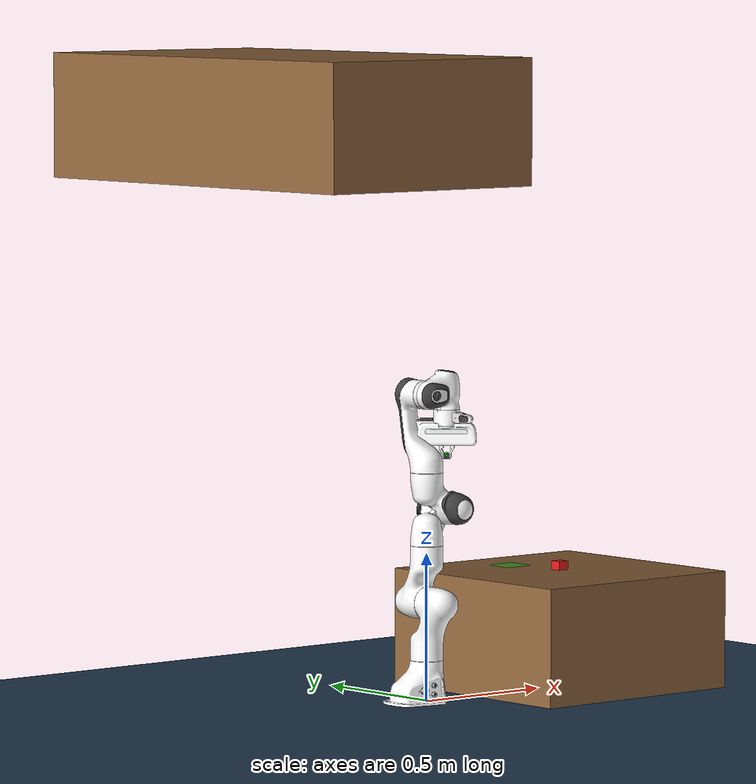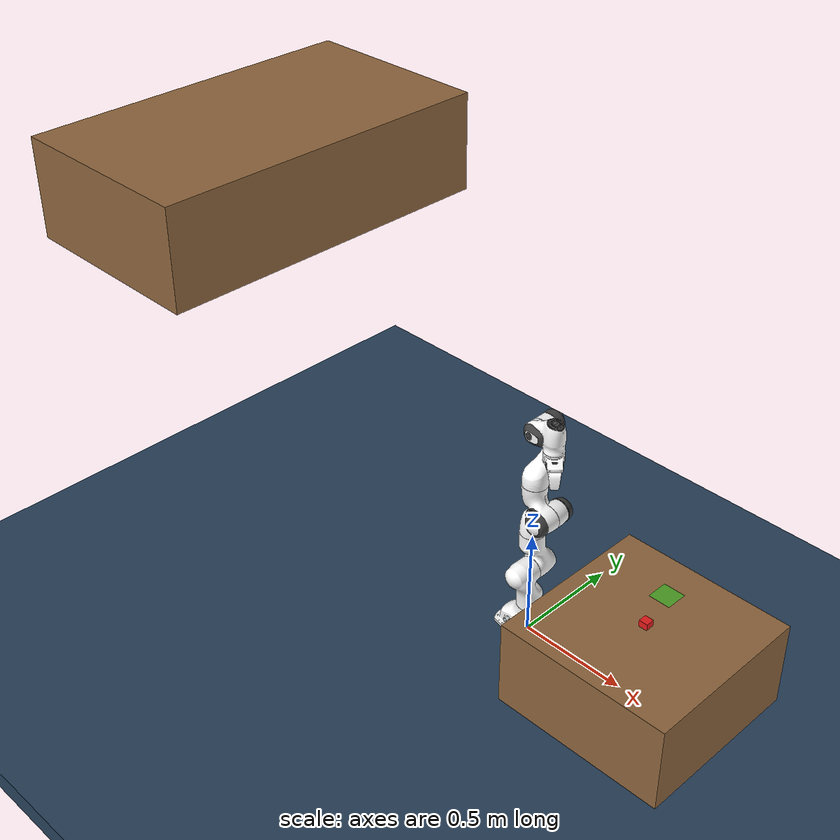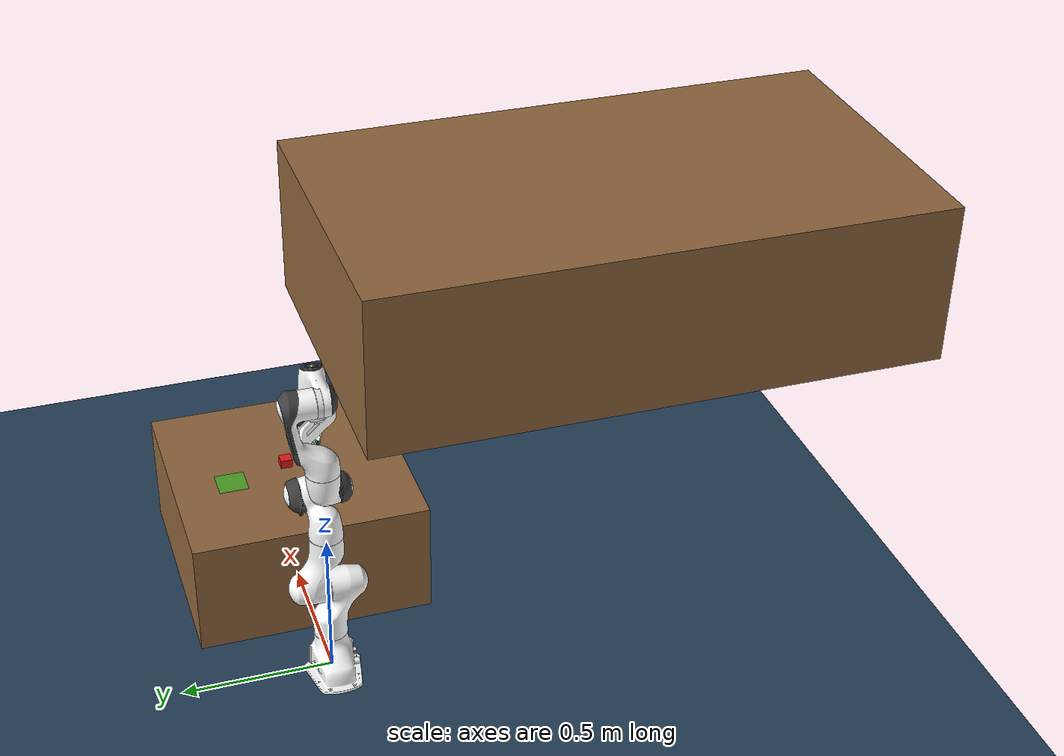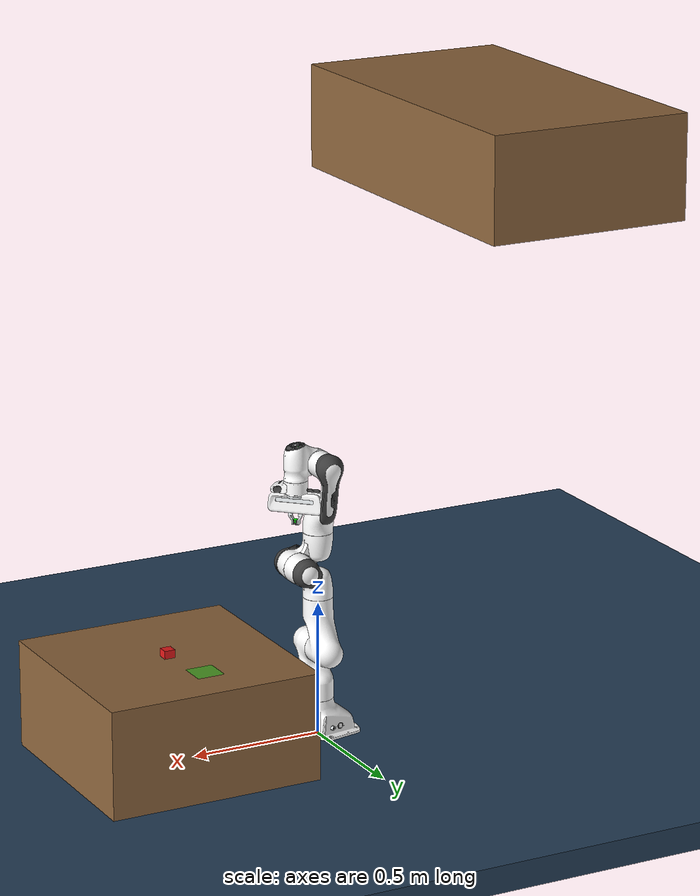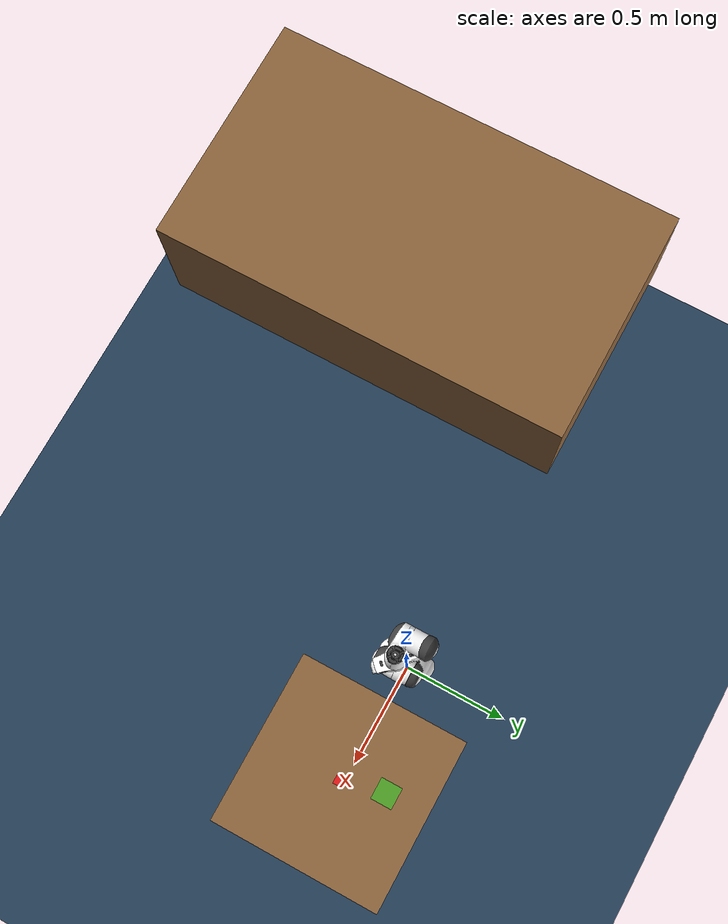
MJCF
<mujoco model="dgpo_final_scene">
  <!-- Include Panda robot -->
  <include file="../mujoco_menagerie/franka_emika_panda/panda.xml"/>

  <compiler meshdir="../mujoco_menagerie/franka_emika_panda/assets" angle="radian" autolimits="true"/>
<option timestep="0.0005" solver="Newton" iterations="30" tolerance="1e-9" jacobian="dense" cone="elliptic"/>

  <visual>
    <quality shadowsize="8192" />
    <headlight diffuse="0 0 0" ambient="0.5 0.5 0.5" specular="0 0 0" active="1" />
    <global azimuth="120" elevation="-20" />
  </visual>

<asset>

    <texture name="tex_checker_blue" type="2d" builtin="checker" rgb1="0.1 0.2 0.3" rgb2="0.2 0.3 0.4" width="300" height="300"/>

    <texture name="tex_checker_green" type="2d" builtin="checker" rgb1="0.1 0.3 0.2" rgb2="0.2 0.4 0.3" width="300" height="300"/>

    <texture name="tex_noise_low_contrast" type="2d" builtin="checker" rgb1="0.4 0.4 0.4" rgb2="0.6 0.6 0.6" width="300" height="300"/>

    <texture name="tex_noise_high_contrast" type="2d" builtin="checker" rgb1="0.1 0.1 0.1" rgb2="0.7 0.7 0.7" width="300" height="300"/>

    <!-- 2. Realistic Textures (from image files) -->
    <!-- IMPORTANT: Update the file paths to match your project structure -->
    <texture name="tex_wood_light" type="2d" file="assets/textures/wood_light.png"/>
    <texture name="tex_wood_dark" type="2d" file="assets/textures/wood_dark.png"/>
    <texture name="tex_metal_brushed" type="2d" file="assets/textures/metal_brushed.png"/>
    <texture name="tex_marble_white" type="2d" file="assets/textures/marble_white.png"/>

    <texture name="tex_wood_stripe" type="2d" file="assets/textures/wood_stripe.png"/> <!-- NEW -->
    <texture name="tex_wood_paquet" type="2d" file="assets/textures/wood_paquet.png"/> <!-- NEW -->

    <!-- Materials for the Floor -->
    <material name="mat_floor_checker_blue" texture="tex_checker_blue" texrepeat="5 5" texuniform="true" reflectance="0.2"/>
    <material name="mat_floor_checker_green" texture="tex_checker_green" texrepeat="5 5" texuniform="true" reflectance="0.2"/>
    <material name="mat_floor_wood_dark" texture="tex_wood_dark" texrepeat="2 2" texuniform="true" reflectance="0.1"/>
    <material name="mat_floor_wood_paquet" texture="tex_wood_paquet" texrepeat="3 3" texuniform="true" reflectance="0.05"/>

    <!-- Materials for the Table -->
    <material name="mat_table_wood_light"
              texture="tex_wood_light"
              texrepeat="1 1"
              texuniform="true"
              rgba="0.8 0.8 0.8 1"
              specular="0.02"
              shininess="0.1"
              reflectance="0.0"/>

    <material name="mat_table_metal_brushed"
              texture="tex_metal_brushed"
              texrepeat="1 1"
              texuniform="true"
              specular="0.8"      shininess="0.6"     reflectance="0.05"/>

    <material name="mat_table_marble_white"
              texture="tex_marble_white"
              texrepeat="1 1"
              texuniform="true"
              rgba="0.9 0.9 0.9 1"
              specular="0.01"
              shininess="0.05"
              reflectance="0.0"/>

    <material name="mat_table_noise_low"
              texture="tex_noise_low_contrast"
              texrepeat="1 1"
              texuniform="true"
              specular="0.0"
              reflectance="0.0"/>

    <material name="mat_table_noise_high"
              texture="tex_noise_high_contrast"
              texrepeat="1 1"
              texuniform="true"
              specular="0.0"
              reflectance="0.0"/>
    <material name="mat_table_wood_stripe"
              texture="tex_wood_stripe"
              texrepeat="2 2"
              texuniform="true"
              specular="0.02"
              shininess="0.1"
              reflectance="0.0"/>
    <!-- Original materials for the object and goal (we don't randomize these) -->
    <material name="cube_mat" rgba="0.9 0.1 0.1 1.0"/>
    <material name="goal_mat" rgba="0.1 0.9 0.1 0.5"/>
  </asset>
  <default>
     <geom solref="0.02 1" solimp="0.95 0.98 0.001" friction="1.5 0.005 0.0001"/>
  </default>
  <worldbody>

  <light name="main_light"
           pos="1.5 0.5 2.5"
           dir="0 0 -1"
           directional="false"
           castshadow="true"
           cutoff="60"
           exponent="30"
           diffuse="0.8 0.8 0.8"
           specular="0.2 0.2 0.2"/>

    <light name="fill_light"
           pos="-0.5 -0.5 2.0"
           dir="0 0 -1"
           directional="false"
           castshadow="true"
           cutoff="80"
           exponent="20"
           diffuse="0.4 0.4 0.4"
           specular="0.05 0.05 0.05"/>

    <light name="back_light"
           pos="0.6 -1.0 1.5"
           dir="0 0 -1"
           directional="false"
           castshadow="true"
           cutoff="70"
           exponent="25"
           diffuse="0.25 0.25 0.25"
           specular="0.1 0.1 0.1"/>

    <geom name="floor" type="box" pos="0.5 0 -0.05" size="5 5 0.05" material="mat_floor_checker_blue" contype="0" conaffinity="0"/>

    <!-- Table -->

    <body name="table" pos="0.6 0 0.2">
      <geom name="table_geom" type="box" size="0.4 0.4 0.2" material="mat_table_wood_light"/>
    </body>
    <body name="tablse" pos="-1 -0.5 2.0">
      <geom name="tabsle_geom" type="box" size="0.4 0.7 0.2" material="mat_table_wood_light"/>
    </body>
    <!-- Robot base anchor -->
    <body name="robot_base" pos="0 0 0"/>

    <!-- Cube (resting on table) -->
    <body name="object" pos="0.6 0 0.41">
      <joint type="free" name="object_joint" damping="0.05"/>
      <geom name="object_geom" type="box" size="0.02 0.02 0.02" material="cube_mat" mass="0.25"/>
       <site name="object_site" pos="0 0 0" size="0.005" rgba="1 0 0 0.5"/>
    </body>

    <!-- Goal marker (on table surface) -->
    <body name="goal" pos="0.55 0.2 0.401">
      <geom name="goal_geom" type="box" size="0.05 0.05 0.001" material="goal_mat" contype="0" conaffinity="0"/>
    </body>
    <!-- Camera -->
    <camera name="fixed_camera" pos="1.2 -0.5 1.0" xyaxes="0 -1 0 0.707 0 -0.707"/>

  </worldbody>

<equality>

    <weld body1="robot_base" body2="link0"/>

</equality>

<!-- In envs/panda_pick_place.xml -->

  <!-- Extra contact exclusions quat="0.707 0.707 0 0" -->
<contact>
    <!-- Exclude contacts between the fingers and the table to prevent sticking -->
    <exclude body1="left_finger" body2="table"/>
    <exclude body1="right_finger" body2="table"/>

    <!-- THIS IS THE FIX: Prevent the main hand from sticking to the table -->
    <exclude body1="hand" body2="table"/>

</contact>

</mujoco>

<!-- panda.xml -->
<mujoco model="panda">
  <compiler angle="radian" meshdir="assets" autolimits="true"/>

  <default>
    <default class="panda">
      <material specular="0.5" shininess="0.25"/>
      <joint armature="0.1" damping="1" axis="0 0 1" range="-2.8973 2.8973"/>
      <general dyntype="none" biastype="affine" ctrlrange="-2.8973 2.8973" forcerange="-87 87"/>
      <default class="finger">
        <joint axis="0 1 0" type="slide" range="0 0.04"/>
      </default>

      <default class="visual">
        <geom type="mesh" contype="0" conaffinity="0" group="2"/>
      </default>
      <default class="collision">
        <geom type="mesh" group="3"/>
        <default class="fingertip_pad_collision_1">
          <geom type="box" size="0.0085 0.004 0.012" pos="0 0.0055 0.0445"/>
        </default>
        <default class="fingertip_pad_collision_2">
          <geom type="box" size="0.003 0.002 0.003" pos="0.0055 0.002 0.05"/>
        </default>
        <default class="fingertip_pad_collision_3">
          <geom type="box" size="0.003 0.002 0.003" pos="-0.0055 0.002 0.05"/>
        </default>
        <default class="fingertip_pad_collision_4">
          <geom type="box" size="0.003 0.002 0.0035" pos="0.0055 0.002 0.0395"/>
        </default>
        <default class="fingertip_pad_collision_5">
          <geom type="box" size="0.003 0.002 0.0035" pos="-0.0055 0.002 0.0395"/>
        </default>
      </default>
    </default>
  </default>

  <asset>
    <material class="panda" name="white" rgba="1 1 1 1" specular="0.2" shininess="30"/>
    <material class="panda" name="off_white" rgba="0.901961 0.921569 0.929412 1" specular="0.15" shininess="30"/>
    <material class="panda" name="black" rgba="0.25 0.25 0.25 1"/>
    <material class="panda" name="green" rgba="0 1 0 1"/>
    <material class="panda" name="light_blue" rgba="0.039216 0.541176 0.780392 1"/>

    <!-- Collision meshes -->
    <mesh name="link0_c" file="link0.stl"/>
    <mesh name="link1_c" file="link1.stl"/>
    <mesh name="link2_c" file="link2.stl"/>
    <mesh name="link3_c" file="link3.stl"/>
    <mesh name="link4_c" file="link4.stl"/>
    <mesh name="link5_c0" file="link5_collision_0.obj"/>
    <mesh name="link5_c1" file="link5_collision_1.obj"/>
    <mesh name="link5_c2" file="link5_collision_2.obj"/>
    <mesh name="link6_c" file="link6.stl"/>
    <mesh name="link7_c" file="link7.stl"/>
    <mesh name="hand_c" file="hand.stl"/>

    <!-- Visual meshes -->
    <mesh file="link0_0.obj"/>
    <mesh file="link0_1.obj"/>
    <mesh file="link0_2.obj"/>
    <mesh file="link0_3.obj"/>
    <mesh file="link0_4.obj"/>
    <mesh file="link0_5.obj"/>
    <mesh file="link0_7.obj"/>
    <mesh file="link0_8.obj"/>
    <mesh file="link0_9.obj"/>
    <mesh file="link0_10.obj"/>
    <mesh file="link0_11.obj"/>
    <mesh file="link1.obj"/>
    <mesh file="link2.obj"/>
    <mesh file="link3_0.obj"/>
    <mesh file="link3_1.obj"/>
    <mesh file="link3_2.obj"/>
    <mesh file="link3_3.obj"/>
    <mesh file="link4_0.obj"/>
    <mesh file="link4_1.obj"/>
    <mesh file="link4_2.obj"/>
    <mesh file="link4_3.obj"/>
    <mesh file="link5_0.obj"/>
    <mesh file="link5_1.obj"/>
    <mesh file="link5_2.obj"/>
    <mesh file="link6_0.obj"/>
    <mesh file="link6_1.obj"/>
    <mesh file="link6_2.obj"/>
    <mesh file="link6_3.obj"/>
    <mesh file="link6_4.obj"/>
    <mesh file="link6_5.obj"/>
    <mesh file="link6_6.obj"/>
    <mesh file="link6_7.obj"/>
    <mesh file="link6_8.obj"/>
    <mesh file="link6_9.obj"/>
    <mesh file="link6_10.obj"/>
    <mesh file="link6_11.obj"/>
    <mesh file="link6_12.obj"/>
    <mesh file="link6_13.obj"/>
    <mesh file="link6_14.obj"/>
    <mesh file="link6_15.obj"/>
    <mesh file="link6_16.obj"/>
    <mesh file="link7_0.obj"/>
    <mesh file="link7_1.obj"/>
    <mesh file="link7_2.obj"/>
    <mesh file="link7_3.obj"/>
    <mesh file="link7_4.obj"/>
    <mesh file="link7_5.obj"/>
    <mesh file="link7_6.obj"/>
    <mesh file="link7_7.obj"/>
    <mesh file="hand_0.obj"/>
    <mesh file="hand_1.obj"/>
    <mesh file="hand_2.obj"/>
    <mesh file="hand_3.obj"/>
    <mesh file="hand_4.obj"/>
    <mesh file="finger_0.obj"/>
    <mesh file="finger_1.obj"/>
  </asset>

  <worldbody>
    <body name="link0" childclass="panda">
      <inertial mass="0.629769" pos="-0.041018 -0.00014 0.049974"
        fullinertia="0.00315 0.00388 0.004285 8.2904e-7 0.00015 8.2299e-6"/>
      <geom mesh="link0_0" material="off_white" class="visual"/>
      <geom mesh="link0_1" material="black" class="visual"/>
      <geom mesh="link0_2" material="off_white" class="visual"/>
      <geom mesh="link0_3" material="black" class="visual"/>
      <geom mesh="link0_4" material="off_white" class="visual"/>
      <geom mesh="link0_5" material="black" class="visual"/>
      <geom mesh="link0_7" material="white" class="visual"/>
      <geom mesh="link0_8" material="white" class="visual"/>
      <geom mesh="link0_9" material="black" class="visual"/>
      <geom mesh="link0_10" material="off_white" class="visual"/>
      <geom mesh="link0_11" material="white" class="visual"/>
      <geom mesh="link0_c" class="collision"/>
      <body name="link1" pos="0 0 0.333">
        <inertial mass="4.970684" pos="0.003875 0.002081 -0.04762"
          fullinertia="0.70337 0.70661 0.0091170 -0.00013900 0.0067720 0.019169"/>
        <joint name="joint1"/>
        <geom material="white" mesh="link1" class="visual"/>
        <geom mesh="link1_c" class="collision"/>
        <body name="link2" quat="1 -1 0 0">
          <inertial mass="0.646926" pos="-0.003141 -0.02872 0.003495"
            fullinertia="0.0079620 2.8110e-2 2.5995e-2 -3.925e-3 1.0254e-2 7.04e-4"/>
          <joint name="joint2" range="-1.7628 1.7628"/>
          <geom material="white" mesh="link2" class="visual"/>
          <geom mesh="link2_c" class="collision"/>
          <body name="link3" pos="0 -0.316 0" quat="1 1 0 0">
            <joint name="joint3"/>
            <inertial mass="3.228604" pos="2.7518e-2 3.9252e-2 -6.6502e-2"
              fullinertia="3.7242e-2 3.6155e-2 1.083e-2 -4.761e-3 -1.1396e-2 -1.2805e-2"/>
            <geom mesh="link3_0" material="white" class="visual"/>
            <geom mesh="link3_1" material="white" class="visual"/>
            <geom mesh="link3_2" material="white" class="visual"/>
            <geom mesh="link3_3" material="black" class="visual"/>
            <geom mesh="link3_c" class="collision"/>
            <body name="link4" pos="0.0825 0 0" quat="1 1 0 0">
              <inertial mass="3.587895" pos="-5.317e-2 1.04419e-1 2.7454e-2"
                fullinertia="2.5853e-2 1.9552e-2 2.8323e-2 7.796e-3 -1.332e-3 8.641e-3"/>
              <joint name="joint4" range="-3.0718 -0.0698"/>
              <geom mesh="link4_0" material="white" class="visual"/>
              <geom mesh="link4_1" material="white" class="visual"/>
              <geom mesh="link4_2" material="black" class="visual"/>
              <geom mesh="link4_3" material="white" class="visual"/>
              <geom mesh="link4_c" class="collision"/>
              <body name="link5" pos="-0.0825 0.384 0" quat="1 -1 0 0">
                <inertial mass="1.225946" pos="-1.1953e-2 4.1065e-2 -3.8437e-2"
                  fullinertia="3.5549e-2 2.9474e-2 8.627e-3 -2.117e-3 -4.037e-3 2.29e-4"/>
                <joint name="joint5"/>
                <geom mesh="link5_0" material="black" class="visual"/>
                <geom mesh="link5_1" material="white" class="visual"/>
                <geom mesh="link5_2" material="white" class="visual"/>
                <geom mesh="link5_c0" class="collision"/>
                <geom mesh="link5_c1" class="collision"/>
                <geom mesh="link5_c2" class="collision"/>
                <body name="link6" quat="1 1 0 0">
                  <inertial mass="1.666555" pos="6.0149e-2 -1.4117e-2 -1.0517e-2"
                    fullinertia="1.964e-3 4.354e-3 5.433e-3 1.09e-4 -1.158e-3 3.41e-4"/>
                  <joint name="joint6" range="-0.0175 3.7525"/>
                  <geom mesh="link6_0" material="off_white" class="visual"/>
                  <geom mesh="link6_1" material="white" class="visual"/>
                  <geom mesh="link6_2" material="black" class="visual"/>
                  <geom mesh="link6_3" material="white" class="visual"/>
                  <geom mesh="link6_4" material="white" class="visual"/>
                  <geom mesh="link6_5" material="white" class="visual"/>
                  <geom mesh="link6_6" material="white" class="visual"/>
                  <geom mesh="link6_7" material="light_blue" class="visual"/>
                  <geom mesh="link6_8" material="light_blue" class="visual"/>
                  <geom mesh="link6_9" material="black" class="visual"/>
                  <geom mesh="link6_10" material="black" class="visual"/>
                  <geom mesh="link6_11" material="white" class="visual"/>
                  <geom mesh="link6_12" material="green" class="visual"/>
                  <geom mesh="link6_13" material="white" class="visual"/>
                  <geom mesh="link6_14" material="black" class="visual"/>
                  <geom mesh="link6_15" material="black" class="visual"/>
                  <geom mesh="link6_16" material="white" class="visual"/>
                  <geom mesh="link6_c" class="collision"/>
                  <body name="link7" pos="0.088 0 0" quat="1 1 0 0">
                    <inertial mass="7.35522e-01" pos="1.0517e-2 -4.252e-3 6.1597e-2"
                      fullinertia="1.2516e-2 1.0027e-2 4.815e-3 -4.28e-4 -1.196e-3 -7.41e-4"/>
                    <joint name="joint7"/>
                    <geom mesh="link7_0" material="white" class="visual"/>
                    <geom mesh="link7_1" material="black" class="visual"/>
                    <geom mesh="link7_2" material="black" class="visual"/>
                    <geom mesh="link7_3" material="black" class="visual"/>
                    <geom mesh="link7_4" material="black" class="visual"/>
                    <geom mesh="link7_5" material="black" class="visual"/>
                    <geom mesh="link7_6" material="black" class="visual"/>
                    <geom mesh="link7_7" material="white" class="visual"/>
                    <geom mesh="link7_c" class="collision"/>
                    <body name="hand" pos="0 0 0.107" quat="0.9238795 0 0 -0.3826834">
                      <inertial mass="0.73" pos="-0.01 0 0.03" diaginertia="0.001 0.0025 0.0017"/>
                      <geom mesh="hand_0" material="off_white" class="visual"/>
                      <geom mesh="hand_1" material="black" class="visual"/>
                      <geom mesh="hand_2" material="black" class="visual"/>
                      <geom mesh="hand_3" material="white" class="visual"/>
                      <geom mesh="hand_4" material="off_white" class="visual"/>

                      <geom mesh="hand_c" class="collision"/>
                                            <site name="attachment_site" type="sphere" size="0.01" pos="0 0 0.1" rgba="0 0.8 0 1"/>
                                    <camera name="wrist_camera" pos="0.05 0 0" quat="0 0 1 0" fovy="60"/>

                      <body name="left_finger" pos="0 0 0.0584">
                        <inertial mass="0.015" pos="0 0 0" diaginertia="2.375e-6 2.375e-6 7.5e-7"/>
                        <joint name="finger_joint1" class="finger"/>
                        <geom mesh="finger_0" material="off_white" class="visual"/>
                        <geom mesh="finger_1" material="black" class="visual"/>

                        <geom mesh="finger_0" class="collision"/>
                        <geom class="fingertip_pad_collision_1" size="0.0085 0.004 0.012"/>
                        <geom class="fingertip_pad_collision_2"/>
                        <geom class="fingertip_pad_collision_3"/>
                        <geom class="fingertip_pad_collision_4"/>
                        <geom class="fingertip_pad_collision_5"/>
                        <site name="left_fingertip" type="sphere" size="0.005" pos="0 0.0055 0.05" rgba="1 0 0 0.5"/>
                      </body>

                      <body name="right_finger" pos="0 0 0.0584" quat="0 0 0 1">
                        <inertial mass="0.015" pos="0 0 0" diaginertia="2.375e-6 2.375e-6 7.5e-7"/>
                        <joint name="finger_joint2" class="finger"/>
                        <geom mesh="finger_0" material="off_white" class="visual"/>
                        <geom mesh="finger_1" material="black" class="visual"/>
                        <geom mesh="finger_0" class="collision"/>
                        <geom class="fingertip_pad_collision_1" size="0.0085 0.004 0.012"/>
                        <geom class="fingertip_pad_collision_2"/>
                        <geom class="fingertip_pad_collision_3"/>
                        <geom class="fingertip_pad_collision_4"/>
                        <geom class="fingertip_pad_collision_5"/>
                        <site name="right_fingertip" type="sphere" size="0.005" pos="0 0.0055 0.05" rgba="1 0 0 0.5"/>

                      </body>
                    </body>
                  </body>
                </body>
              </body>
            </body>
          </body>
        </body>
      </body>
    </body>
  </worldbody>

  <actuator>
    <general class="panda" name="actuator1" joint="joint1" gainprm="4500" biasprm="0 -4500 -450"/>
    <general class="panda" name="actuator2" joint="joint2" gainprm="4500" biasprm="0 -4500 -450"
      ctrlrange="-1.7628 1.7628"/>
    <general class="panda" name="actuator3" joint="joint3" gainprm="3500" biasprm="0 -3500 -350"/>
    <general class="panda" name="actuator4" joint="joint4" gainprm="3500" biasprm="0 -3500 -350"
      ctrlrange="-3.0718 -0.0698"/>
    <general class="panda" name="actuator5" joint="joint5" gainprm="2000" biasprm="0 -2000 -200" forcerange="-12 12"/>
    <general class="panda" name="actuator6" joint="joint6" gainprm="2000" biasprm="0 -2000 -200" forcerange="-12 12"
      ctrlrange="-0.0175 3.7525"/>
    <general class="panda" name="actuator7" joint="joint7" gainprm="2000" biasprm="0 -2000 -200" forcerange="-12 12"/>
    <!-- Remap original ctrlrange (0, 0.04) to (0, 255): 0.04 * 100 / 255 = 0.01568627451 -->

    <position name="finger_actuator1" joint="finger_joint1" ctrlrange="0 0.04" kp="200"/>
    <position name="finger_actuator2" joint="finger_joint2" ctrlrange="0 0.04" kp="200"/>
  </actuator>

  <sensor>
      <!-- Force sensors give a 3D force vector. -->
      <force name="left_finger_force_sensor" site="left_fingertip"/>
      <force name="right_finger_force_sensor" site="right_fingertip"/>
      <!-- Touch sensors give a scalar pressure reading. -->
      <touch name="left_finger_touch_sensor" site="left_fingertip"/>
      <touch name="right_finger_touch_sensor" site="right_fingertip"/>
  </sensor>

  <contact>
    <exclude body1="link0" body2="link1"/>
  </contact>
</mujoco>
